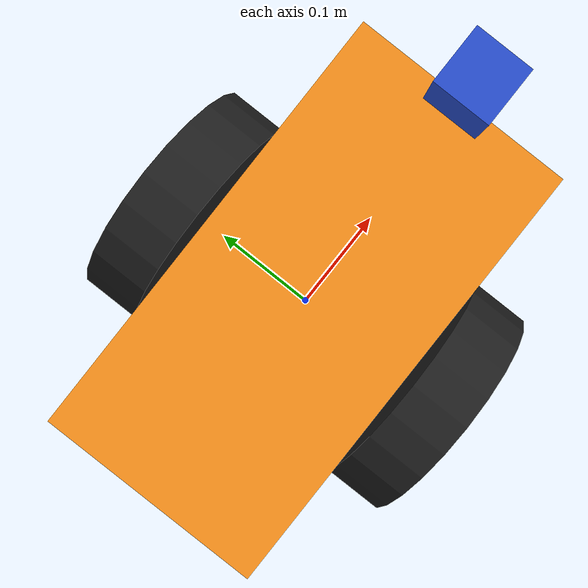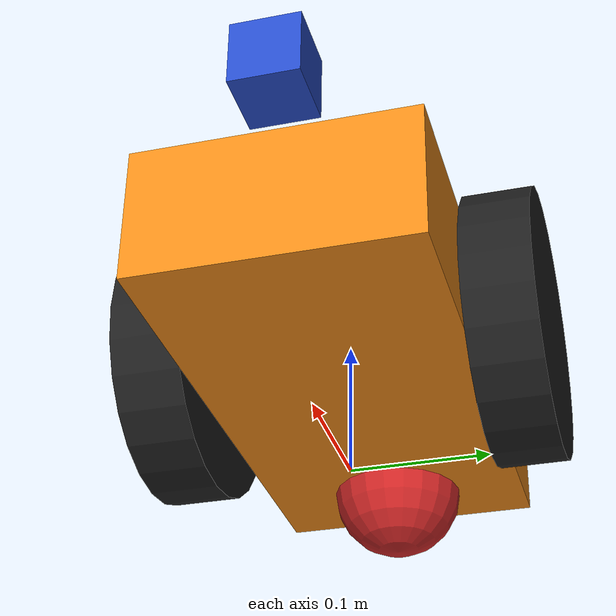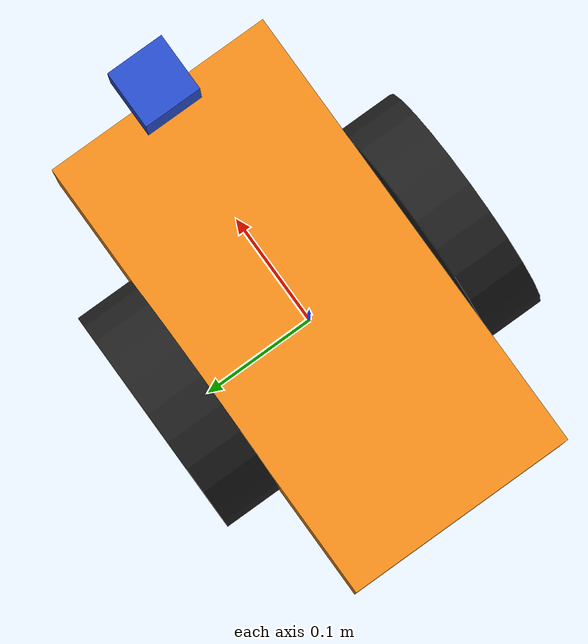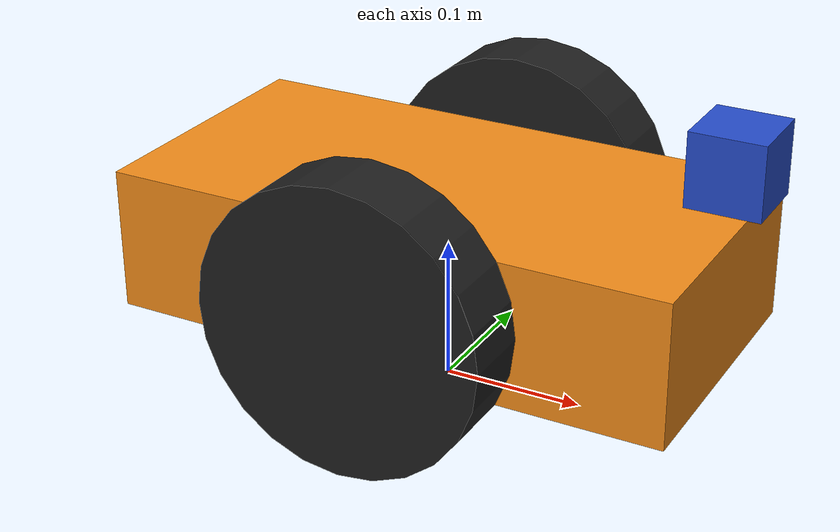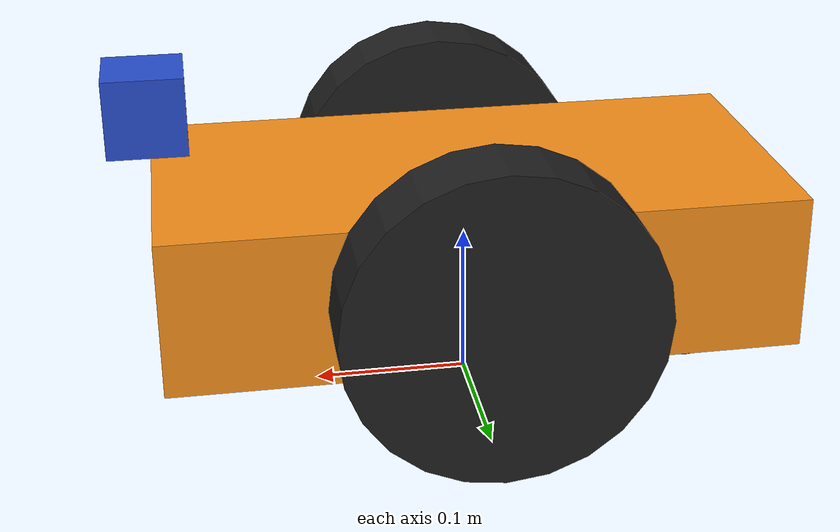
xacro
<?xml version="1.0"?>
<robot name="mybot" xmlns:xacro="http://www.ros.org/wiki/xacro">
  <xacro:property name="PI" value="3.1415926535897931"/>

  <xacro:property name="chassisHeight" value="0.1"/>
  <xacro:property name="chassisLength" value="0.4"/>
  <xacro:property name="chassisWidth" value="0.2"/>
  <xacro:property name="chassisMass" value="50"/>

  <xacro:property name="cameraPos" value="0.2"/>
  <xacro:property name="cameraPosX" value="0.2"/>

  <xacro:property name="casterRadius" value="0.05"/>
  <xacro:property name="casterMass" value="5"/>

  <xacro:property name="wheelWidth" value="0.05"/>
  <xacro:property name="wheelRadius" value="0.1"/>
  <xacro:property name="wheelPos" value="0.2"/>
  <xacro:property name="wheelMass" value="5"/>

  <xacro:property name="cameraSize" value="0.05"/>
  <xacro:property name="cameraMass" value="0.01"/>

  <xacro:include filename="$(find mybot_description)/urdf/mybot.gazebo" />
  <xacro:include filename="$(find mybot_description)/urdf/materials.xacro" />
  <xacro:include filename="$(find mybot_description)/urdf/macros.xacro" />
  <xacro:include filename="$(find mybot_description)/urdf/camera.gazebo" />

  <gazebo reference="chassis">
    <material>Gazebo/Orange</material>
  </gazebo>

  <gazebo reference="caster_wheel">
    <mu1>1.0</mu1>
    <mu2>1.0</mu2>
    <material>Gazebo/Red</material>
  </gazebo>

  <link name="footprint" />

  <joint name="base_joint" type="fixed">
    <parent link="footprint"/>
    <child link="chassis"/>
  </joint>

  <link name='chassis'>
    <collision>
      <origin xyz="0 0 ${wheelRadius}" rpy="0 0 0"/>
      <geometry>
        <box size="${chassisLength} ${chassisWidth} ${chassisHeight}"/>
      </geometry>
    </collision>
    <visual>
      <origin xyz="0 0 ${wheelRadius}" rpy="0 0 0"/>
      <geometry>
        <box size="${chassisLength} ${chassisWidth} ${chassisHeight}"/>
      </geometry>
      <material name="orange"/>
    </visual>
    <inertial>
      <origin xyz="0 0 ${wheelRadius}" rpy="0 0 0"/>
      <mass value="${chassisMass}"/>
      <xacro:box_inertia m="${chassisMass}" x="${chassisLength}" y="${chassisWidth}" z="${chassisHeight}"/>
    </inertial>
  </link>

  <joint name="fixed" type="fixed">
    <parent link="chassis"/>
    <child link="caster_wheel"/>
  </joint>

  <link name="caster_wheel">
    <collision>
      <origin xyz="${casterRadius-chassisLength/2} 0 ${casterRadius-chassisHeight+wheelRadius}" rpy="0 0 0"/>
      <geometry>
        <sphere radius="${casterRadius}"/>
      </geometry>
    </collision>

    <visual>
      <origin xyz="${casterRadius-chassisLength/2} 0 ${casterRadius-chassisHeight+wheelRadius}" rpy="0 0 0"/>
      <geometry>
        <sphere radius="${casterRadius}"/>
      </geometry>
      <material name="red"/>
    </visual>

    <inertial>
      <origin xyz="${casterRadius-chassisLength/2} 0 ${casterRadius-chassisHeight+wheelRadius}" rpy="0 0 0"/>
      <mass value="${casterMass}"/>
      <xacro:sphere_inertia m="${casterMass}" r="${casterRadius}"/>
    </inertial>
  </link>

  <xacro:wheel lr="left" tY="1"/>
  <xacro:wheel lr="right" tY="-1"/>

  <joint name="camera_joint" type="fixed">
    <parent link="footprint"/>
    <child link="camera"/>
  </joint>

  <link name="camera">
    <collision>
      <origin xyz="${cameraPosX} 0 ${cameraPos}" rpy="0 0 0"/>
      <geometry>
        <box size="${cameraSize} ${cameraSize} ${cameraSize}"/>
      </geometry>
    </collision>

    <visual>
      <origin xyz="${cameraPosX} 0 ${cameraPos}" rpy="0 0 0"/>
      <geometry>
        <box size="${cameraSize} ${cameraSize} ${cameraSize}"/>
      </geometry>
      <material name="blue"/>
    </visual>

    <inertial>
      <mass value="${cameraMass}"/>
      <origin xyz="${cameraPosX} 0 ${cameraPos}" rpy="0 0 0"/>
      <xacro:box_inertia m="${cameraMass}" x="${cameraSize}" y="${cameraSize}" z="${cameraSize}" />
    </inertial>
  </link>

</robot>

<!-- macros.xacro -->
<robot xmlns:xacro="http://www.ros.org/wiki/xacro">

  <xacro:macro name="cylinder_inertia" params="m r h">
    <inertia  ixx="${m*(3*r*r+h*h)/12}" ixy = "0" ixz = "0"
      iyy="${m*(3*r*r+h*h)/12}" iyz = "0"
      izz="${m*r*r/2}"
      />
  </xacro:macro>

  <xacro:macro name="box_inertia" params="m x y z">
    <inertia  ixx="${m*(y*y+z*z)/12}" ixy = "0" ixz = "0"
      iyy="${m*(x*x+z*z)/12}" iyz = "0"
      izz="${m*(x*x+z*z)/12}"
    />
  </xacro:macro>

  <xacro:macro name="sphere_inertia" params="m r">
    <inertia  ixx="${2*m*r*r/5}" ixy = "0" ixz = "0"
      iyy="${2*m*r*r/5}" iyz = "0"
      izz="${2*m*r*r/5}"
    />
  </xacro:macro>

  <xacro:macro name="wheel" params="lr tY">

    <link name="${lr}_wheel">
      <collision>
        <origin xyz="0 0 0" rpy="0 ${PI/2} ${PI/2}" />
        <geometry>
          <cylinder length="${wheelWidth}" radius="${wheelRadius}"/>
        </geometry>
      </collision>

      <visual>
        <origin xyz="0 0 0" rpy="0 ${PI/2} ${PI/2}" />
        <geometry>
          <cylinder length="${wheelWidth}" radius="${wheelRadius}"/>
        </geometry>
        <material name="black"/>
      </visual>

      <inertial>
        <origin xyz="0 0 0" rpy="0 ${PI/2} ${PI/2}" />
        <mass value="${wheelMass}"/>
        <xacro:cylinder_inertia m="${wheelMass}" r="${wheelRadius}" h="${wheelWidth}"/>
      </inertial>
    </link>

    <gazebo reference="${lr}_wheel">
      <mu1 value="1.0"/>
      <mu2 value="1.0"/>
      <kp  value="10000000.0" />
      <kd  value="1.0" />
      <fdir1 value="1 0 0"/>
      <material>Gazebo/Black</material>
    </gazebo>

    <joint name="${lr}_wheel_hinge" type="continuous">
      <parent link="chassis"/>
      <child link="${lr}_wheel"/>
      <origin xyz="${-wheelPos+chassisLength/2} ${tY*wheelWidth/2+tY*chassisWidth/2} ${wheelRadius}" rpy="0 0 0" />
      <axis xyz="0 1 0" rpy="0 0 0" />
      <limit effort="100" velocity="100"/>
      <joint_properties damping="0.1" friction="0.5"/>
    </joint>

    <transmission name="${lr}_trans">
      <type>transmission_interface/SimpleTransmission</type>
      <joint name="${lr}_wheel_hinge">
        <hardwareInterface>hardware_interface/EffortJointInterface</hardwareInterface>
      </joint>
      <actuator name="${lr}Motor">
        <hardwareInterface>EffortJointInterface</hardwareInterface>
        <mechanicalReduction>10</mechanicalReduction>
      </actuator>

    </transmission>

  </xacro:macro>

</robot>
